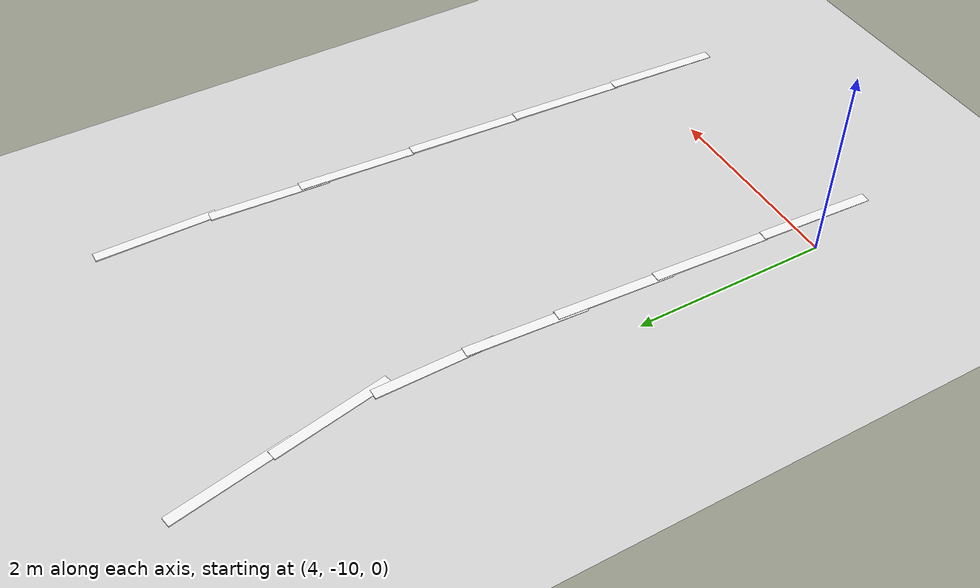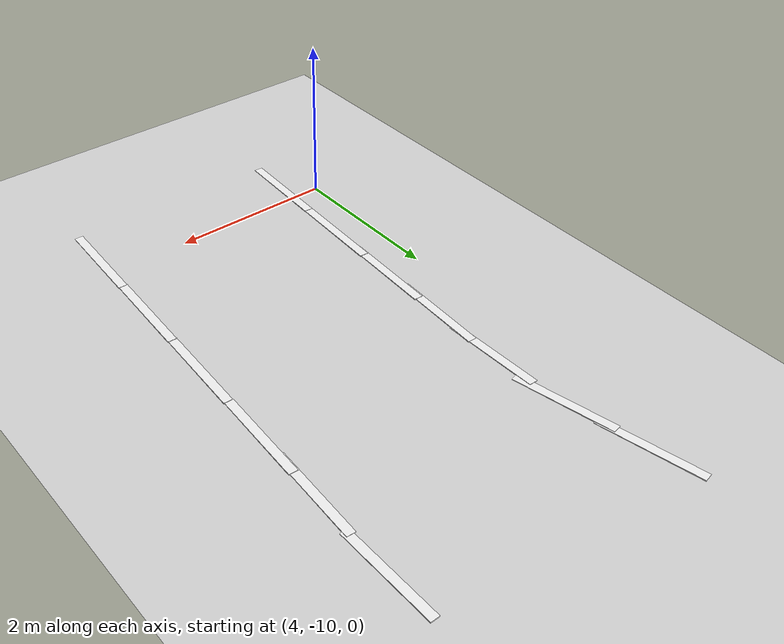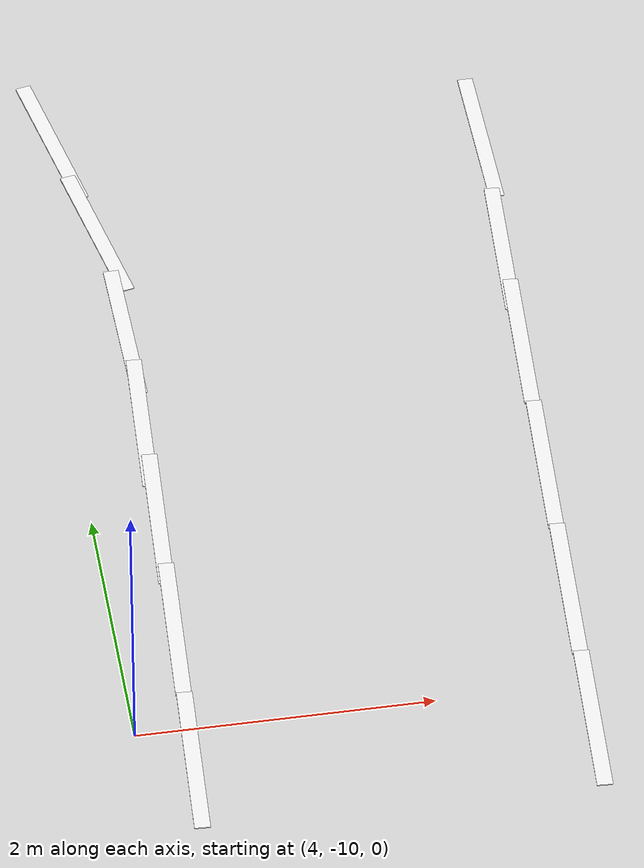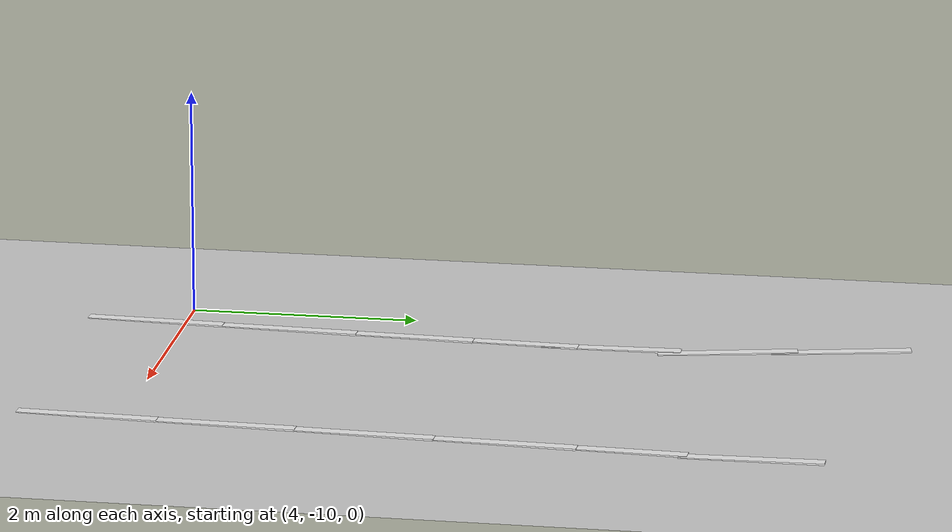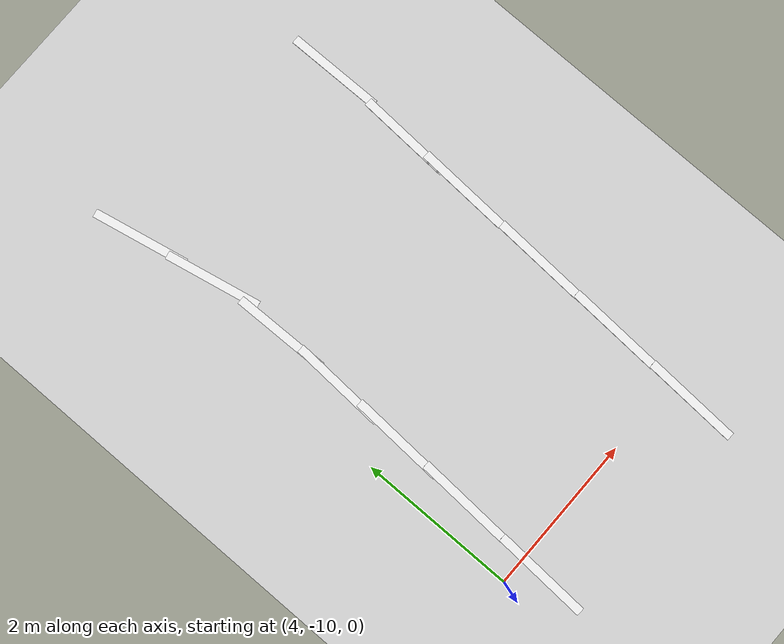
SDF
<sdf version="1.7">
 <world name="default">
  <model name="ground_plane">
   <static>1</static>
   <link name="link">
    <collision name="collision">
     <geometry><plane><normal>0 0 1</normal><size>100 100</size></plane></geometry>
     <surface>
      <contact><collide_bitmask>65535</collide_bitmask></contact>
      <friction><ode><mu>100</mu><mu2>50</mu2></ode></friction>
     </surface>
    </collision>
    <visual name="visual">
     <cast_shadows>0</cast_shadows>
     <geometry><plane><normal>0 0 1</normal><size>100 100</size></plane></geometry>
     <material>
      <script><uri>file://media/materials/scripts/gazebo.material</uri><name>Gazebo/Grey</name></script>
     </material>
    </visual>
   </link>
  </model>
  <model name="road_way_clone_0_clone_clone_1_clone_clone">
   <link name="link">
    <inertial>
     <mass>2</mass>
     <inertia>
      <ixx>0.249647</ixx>
      <ixy>0</ixy>
      <ixz>0</ixz>
      <iyy>0.00205142</iyy>
      <iyz>0</iyz>
      <izz>0.251372</izz>
     </inertia>
    </inertial>
    <visual name="visual">
     <geometry><box><size>0.106644 1.22348 0.03129</size></box></geometry>
     <material>
      <script><name>Gazebo/White</name><uri>file://media/materials/scripts/gazebo.material</uri></script>
      <shader type="pixel"><normal_map>__default__</normal_map></shader>
      <ambient>1 1 1 1</ambient>
      <diffuse>1 1 1 1</diffuse>
      <specular>0 0 0 1</specular>
      <emissive>0 0 0 1</emissive>
     </material>
    </visual>
    <collision name="collision">
     <geometry><box><size>0.10644 1.22348 0.03129</size></box></geometry>
     <surface>
      <friction>
       <ode><mu>1</mu><mu2>1</mu2><fdir1>0 0 0</fdir1><slip1>0</slip1><slip2>0</slip2></ode>
       <torsional>
        <coefficient>1</coefficient>
        <patch_radius>0</patch_radius>
        <surface_radius>0</surface_radius>
        <use_patch_radius>1</use_patch_radius>
        <ode><slip>0</slip></ode>
       </torsional>
      </friction>
      <bounce><restitution_coefficient>0</restitution_coefficient><threshold>1e+06</threshold></bounce>
      <contact>
       <collide_without_contact>0</collide_without_contact>
       <collide_without_contact_bitmask>1</collide_without_contact_bitmask>
       <collide_bitmask>1</collide_bitmask>
       <ode>
        <soft_cfm>0</soft_cfm>
        <soft_erp>0.2</soft_erp>
        <kp>1e+13</kp>
        <kd>1</kd>
        <max_vel>0.01</max_vel>
        <min_depth>0</min_depth>
       </ode>
       <bullet>
        <split_impulse>1</split_impulse>
        <split_impulse_penetration_threshold>-0.01</split_impulse_penetration_threshold>
        <soft_cfm>0</soft_cfm>
        <soft_erp>0.2</soft_erp>
        <kp>1e+13</kp>
        <kd>1</kd>
       </bullet>
      </contact>
     </surface>
    </collision>
   </link>
   <static>0</static>
   <pose>4.26344 -4.20694 -0.013647 -0.005792 0.001324 -2.93966</pose>
  </model>
  <model name="road_way_clone_0_clone_clone_1_clone_clone_0_clone">
   <link name="link">
    <inertial>
     <mass>2</mass>
     <inertia>
      <ixx>0.249647</ixx>
      <ixy>0</ixy>
      <ixz>0</ixz>
      <iyy>0.00205142</iyy>
      <iyz>0</iyz>
      <izz>0.251372</izz>
     </inertia>
    </inertial>
    <visual name="visual">
     <geometry><box><size>0.106644 1.22348 0.03129</size></box></geometry>
     <material>
      <script><name>Gazebo/White</name><uri>file://media/materials/scripts/gazebo.material</uri></script>
      <shader type="pixel"><normal_map>__default__</normal_map></shader>
      <ambient>1 1 1 1</ambient>
      <diffuse>1 1 1 1</diffuse>
      <specular>0 0 0 1</specular>
      <emissive>0 0 0 1</emissive>
     </material>
    </visual>
    <collision name="collision">
     <geometry><box><size>0.10644 1.22348 0.03129</size></box></geometry>
     <surface>
      <friction>
       <ode><mu>1</mu><mu2>1</mu2><fdir1>0 0 0</fdir1><slip1>0</slip1><slip2>0</slip2></ode>
       <torsional>
        <coefficient>1</coefficient>
        <patch_radius>0</patch_radius>
        <surface_radius>0</surface_radius>
        <use_patch_radius>1</use_patch_radius>
        <ode><slip>0</slip></ode>
       </torsional>
      </friction>
      <bounce><restitution_coefficient>0</restitution_coefficient><threshold>1e+06</threshold></bounce>
      <contact>
       <collide_without_contact>0</collide_without_contact>
       <collide_without_contact_bitmask>1</collide_without_contact_bitmask>
       <collide_bitmask>1</collide_bitmask>
       <ode>
        <soft_cfm>0</soft_cfm>
        <soft_erp>0.2</soft_erp>
        <kp>1e+13</kp>
        <kd>1</kd>
        <max_vel>0.01</max_vel>
        <min_depth>0</min_depth>
       </ode>
       <bullet>
        <split_impulse>1</split_impulse>
        <split_impulse_penetration_threshold>-0.01</split_impulse_penetration_threshold>
        <soft_cfm>0</soft_cfm>
        <soft_erp>0.2</soft_erp>
        <kp>1e+13</kp>
        <kd>1</kd>
       </bullet>
      </contact>
     </surface>
    </collision>
   </link>
   <static>0</static>
   <pose>7.24674 -4.63391 -0.012534 -0.005938 0.000193 -3.13189</pose>
  </model>
  <model name="road_way_clone_0_clone_clone_1_clone_clone_clone_0">
   <link name="link">
    <inertial>
     <mass>2</mass>
     <inertia>
      <ixx>0.249647</ixx>
      <ixy>0</ixy>
      <ixz>0</ixz>
      <iyy>0.00205142</iyy>
      <iyz>0</iyz>
      <izz>0.251372</izz>
     </inertia>
    </inertial>
    <visual name="visual">
     <geometry><box><size>0.106644 1.22348 0.03129</size></box></geometry>
     <material>
      <script><name>Gazebo/White</name><uri>file://media/materials/scripts/gazebo.material</uri></script>
      <shader type="pixel"><normal_map>__default__</normal_map></shader>
      <ambient>1 1 1 1</ambient>
      <diffuse>1 1 1 1</diffuse>
      <specular>0 0 0 1</specular>
      <emissive>0 0 0 1</emissive>
     </material>
    </visual>
    <collision name="collision">
     <geometry><box><size>0.10644 1.22348 0.03129</size></box></geometry>
     <surface>
      <friction>
       <ode><mu>1</mu><mu2>1</mu2><fdir1>0 0 0</fdir1><slip1>0</slip1><slip2>0</slip2></ode>
       <torsional>
        <coefficient>1</coefficient>
        <patch_radius>0</patch_radius>
        <surface_radius>0</surface_radius>
        <use_patch_radius>1</use_patch_radius>
        <ode><slip>0</slip></ode>
       </torsional>
      </friction>
      <bounce><restitution_coefficient>0</restitution_coefficient><threshold>1e+06</threshold></bounce>
      <contact>
       <collide_without_contact>0</collide_without_contact>
       <collide_without_contact_bitmask>1</collide_without_contact_bitmask>
       <collide_bitmask>1</collide_bitmask>
       <ode>
        <soft_cfm>0</soft_cfm>
        <soft_erp>0.2</soft_erp>
        <kp>1e+13</kp>
        <kd>1</kd>
        <max_vel>0.01</max_vel>
        <min_depth>0</min_depth>
       </ode>
       <bullet>
        <split_impulse>1</split_impulse>
        <split_impulse_penetration_threshold>-0.01</split_impulse_penetration_threshold>
        <soft_cfm>0</soft_cfm>
        <soft_erp>0.2</soft_erp>
        <kp>1e+13</kp>
        <kd>1</kd>
       </bullet>
      </contact>
     </surface>
    </collision>
   </link>
   <static>0</static>
   <pose>4.44398 -5.17905 -0.013647 -0.005792 0.001324 -2.93966</pose>
  </model>
  <model name="road_way_clone_0_clone_clone_1_clone_clone_clone_1">
   <link name="link">
    <inertial>
     <mass>2</mass>
     <inertia>
      <ixx>0.249647</ixx>
      <ixy>0</ixy>
      <ixz>0</ixz>
      <iyy>0.00205142</iyy>
      <iyz>0</iyz>
      <izz>0.251372</izz>
     </inertia>
    </inertial>
    <visual name="visual">
     <geometry><box><size>0.106644 1.22348 0.03129</size></box></geometry>
     <material>
      <script><name>Gazebo/White</name><uri>file://media/materials/scripts/gazebo.material</uri></script>
      <shader type="pixel"><normal_map>__default__</normal_map></shader>
      <ambient>1 1 1 1</ambient>
      <diffuse>1 1 1 1</diffuse>
      <specular>0 0 0 1</specular>
      <emissive>0 0 0 1</emissive>
     </material>
    </visual>
    <collision name="collision">
     <geometry><box><size>0.10644 1.22348 0.03129</size></box></geometry>
     <surface>
      <friction>
       <ode><mu>1</mu><mu2>1</mu2><fdir1>0 0 0</fdir1><slip1>0</slip1><slip2>0</slip2></ode>
       <torsional>
        <coefficient>1</coefficient>
        <patch_radius>0</patch_radius>
        <surface_radius>0</surface_radius>
        <use_patch_radius>1</use_patch_radius>
        <ode><slip>0</slip></ode>
       </torsional>
      </friction>
      <bounce><restitution_coefficient>0</restitution_coefficient><threshold>1e+06</threshold></bounce>
      <contact>
       <collide_without_contact>0</collide_without_contact>
       <collide_without_contact_bitmask>1</collide_without_contact_bitmask>
       <collide_bitmask>1</collide_bitmask>
       <ode>
        <soft_cfm>0</soft_cfm>
        <soft_erp>0.2</soft_erp>
        <kp>1e+13</kp>
        <kd>1</kd>
        <max_vel>0.01</max_vel>
        <min_depth>0</min_depth>
       </ode>
       <bullet>
        <split_impulse>1</split_impulse>
        <split_impulse_penetration_threshold>-0.01</split_impulse_penetration_threshold>
        <soft_cfm>0</soft_cfm>
        <soft_erp>0.2</soft_erp>
        <kp>1e+13</kp>
        <kd>1</kd>
       </bullet>
      </contact>
     </surface>
    </collision>
   </link>
   <static>0</static>
   <pose>7.1982 -5.77908 -0.013622 -0.005939 -0.000175 3.08929</pose>
  </model>
  <model name="road_way_clone_0_clone_clone_1_clone_clone_clone_1_clone">
   <link name="link">
    <inertial>
     <mass>2</mass>
     <inertia>
      <ixx>0.249647</ixx>
      <ixy>0</ixy>
      <ixz>0</ixz>
      <iyy>0.00205142</iyy>
      <iyz>0</iyz>
      <izz>0.251372</izz>
     </inertia>
    </inertial>
    <visual name="visual">
     <geometry><box><size>0.106644 1.22348 0.03129</size></box></geometry>
     <material>
      <script><name>Gazebo/White</name><uri>file://media/materials/scripts/gazebo.material</uri></script>
      <shader type="pixel"><normal_map>__default__</normal_map></shader>
      <ambient>1 1 1 1</ambient>
      <diffuse>1 1 1 1</diffuse>
      <specular>0 0 0 1</specular>
      <emissive>0 0 0 1</emissive>
     </material>
    </visual>
    <collision name="collision">
     <geometry><box><size>0.10644 1.22348 0.03129</size></box></geometry>
     <surface>
      <friction>
       <ode><mu>1</mu><mu2>1</mu2><fdir1>0 0 0</fdir1><slip1>0</slip1><slip2>0</slip2></ode>
       <torsional>
        <coefficient>1</coefficient>
        <patch_radius>0</patch_radius>
        <surface_radius>0</surface_radius>
        <use_patch_radius>1</use_patch_radius>
        <ode><slip>0</slip></ode>
       </torsional>
      </friction>
      <bounce><restitution_coefficient>0</restitution_coefficient><threshold>1e+06</threshold></bounce>
      <contact>
       <collide_without_contact>0</collide_without_contact>
       <collide_without_contact_bitmask>1</collide_without_contact_bitmask>
       <collide_bitmask>1</collide_bitmask>
       <ode>
        <soft_cfm>0</soft_cfm>
        <soft_erp>0.2</soft_erp>
        <kp>1e+13</kp>
        <kd>1</kd>
        <max_vel>0.01</max_vel>
        <min_depth>0</min_depth>
       </ode>
       <bullet>
        <split_impulse>1</split_impulse>
        <split_impulse_penetration_threshold>-0.01</split_impulse_penetration_threshold>
        <soft_cfm>0</soft_cfm>
        <soft_erp>0.2</soft_erp>
        <kp>1e+13</kp>
        <kd>1</kd>
       </bullet>
      </contact>
     </surface>
    </collision>
   </link>
   <static>0</static>
   <pose>4.49246 -6.19169 -0.013946 -0.005937 0.000243 -3.12349</pose>
  </model>
  <model name="road_way_clone_0_clone_clone_1_clone_clone_clone_1_clone_0">
   <link name="link">
    <inertial>
     <mass>2</mass>
     <inertia>
      <ixx>0.249647</ixx>
      <ixy>0</ixy>
      <ixz>0</ixz>
      <iyy>0.00205142</iyy>
      <iyz>0</iyz>
      <izz>0.251372</izz>
     </inertia>
    </inertial>
    <visual name="visual">
     <geometry><box><size>0.106644 1.22348 0.03129</size></box></geometry>
     <material>
      <script><name>Gazebo/White</name><uri>file://media/materials/scripts/gazebo.material</uri></script>
      <shader type="pixel"><normal_map>__default__</normal_map></shader>
      <ambient>1 1 1 1</ambient>
      <diffuse>1 1 1 1</diffuse>
      <specular>0 0 0 1</specular>
      <emissive>0 0 0 1</emissive>
     </material>
    </visual>
    <collision name="collision">
     <geometry><box><size>0.10644 1.22348 0.03129</size></box></geometry>
     <surface>
      <friction>
       <ode><mu>1</mu><mu2>1</mu2><fdir1>0 0 0</fdir1><slip1>0</slip1><slip2>0</slip2></ode>
       <torsional>
        <coefficient>1</coefficient>
        <patch_radius>0</patch_radius>
        <surface_radius>0</surface_radius>
        <use_patch_radius>1</use_patch_radius>
        <ode><slip>0</slip></ode>
       </torsional>
      </friction>
      <bounce><restitution_coefficient>0</restitution_coefficient><threshold>1e+06</threshold></bounce>
      <contact>
       <collide_without_contact>0</collide_without_contact>
       <collide_without_contact_bitmask>1</collide_without_contact_bitmask>
       <collide_bitmask>1</collide_bitmask>
       <ode>
        <soft_cfm>0</soft_cfm>
        <soft_erp>0.2</soft_erp>
        <kp>1e+13</kp>
        <kd>1</kd>
        <max_vel>0.01</max_vel>
        <min_depth>0</min_depth>
       </ode>
       <bullet>
        <split_impulse>1</split_impulse>
        <split_impulse_penetration_threshold>-0.01</split_impulse_penetration_threshold>
        <soft_cfm>0</soft_cfm>
        <soft_erp>0.2</soft_erp>
        <kp>1e+13</kp>
        <kd>1</kd>
       </bullet>
      </contact>
     </surface>
    </collision>
   </link>
   <static>0</static>
   <pose>4.47654 -7.0933 -0.013622 -0.005939 -0.000175 3.08929</pose>
  </model>
  <model name="road_way_clone_0_clone_clone_1_clone_clone_clone_1_clone_1">
   <link name="link">
    <inertial>
     <mass>2</mass>
     <inertia>
      <ixx>0.249647</ixx>
      <ixy>0</ixy>
      <ixz>0</ixz>
      <iyy>0.00205142</iyy>
      <iyz>0</iyz>
      <izz>0.251372</izz>
     </inertia>
    </inertial>
    <visual name="visual">
     <geometry><box><size>0.106644 1.22348 0.03129</size></box></geometry>
     <material>
      <script><name>Gazebo/White</name><uri>file://media/materials/scripts/gazebo.material</uri></script>
      <shader type="pixel"><normal_map>__default__</normal_map></shader>
      <ambient>1 1 1 1</ambient>
      <diffuse>1 1 1 1</diffuse>
      <specular>0 0 0 1</specular>
      <emissive>0 0 0 1</emissive>
     </material>
    </visual>
    <collision name="collision">
     <geometry><box><size>0.10644 1.22348 0.03129</size></box></geometry>
     <surface>
      <friction>
       <ode><mu>1</mu><mu2>1</mu2><fdir1>0 0 0</fdir1><slip1>0</slip1><slip2>0</slip2></ode>
       <torsional>
        <coefficient>1</coefficient>
        <patch_radius>0</patch_radius>
        <surface_radius>0</surface_radius>
        <use_patch_radius>1</use_patch_radius>
        <ode><slip>0</slip></ode>
       </torsional>
      </friction>
      <bounce><restitution_coefficient>0</restitution_coefficient><threshold>1e+06</threshold></bounce>
      <contact>
       <collide_without_contact>0</collide_without_contact>
       <collide_without_contact_bitmask>1</collide_without_contact_bitmask>
       <collide_bitmask>1</collide_bitmask>
       <ode>
        <soft_cfm>0</soft_cfm>
        <soft_erp>0.2</soft_erp>
        <kp>1e+13</kp>
        <kd>1</kd>
        <max_vel>0.01</max_vel>
        <min_depth>0</min_depth>
       </ode>
       <bullet>
        <split_impulse>1</split_impulse>
        <split_impulse_penetration_threshold>-0.01</split_impulse_penetration_threshold>
        <soft_cfm>0</soft_cfm>
        <soft_erp>0.2</soft_erp>
        <kp>1e+13</kp>
        <kd>1</kd>
       </bullet>
      </contact>
     </surface>
    </collision>
   </link>
   <static>0</static>
   <pose>7.16303 -6.7125 -0.011904 -0.005939 -0.000175 3.08929</pose>
  </model>
  <model name="road_way_clone_0_clone_clone_1_clone_clone_clone_1_clone_2">
   <link name="link">
    <inertial>
     <mass>2</mass>
     <inertia>
      <ixx>0.249647</ixx>
      <ixy>0</ixy>
      <ixz>0</ixz>
      <iyy>0.00205142</iyy>
      <iyz>0</iyz>
      <izz>0.251372</izz>
     </inertia>
    </inertial>
    <visual name="visual">
     <geometry><box><size>0.106644 1.22348 0.03129</size></box></geometry>
     <material>
      <script><name>Gazebo/White</name><uri>file://media/materials/scripts/gazebo.material</uri></script>
      <shader type="pixel"><normal_map>__default__</normal_map></shader>
      <ambient>1 1 1 1</ambient>
      <diffuse>1 1 1 1</diffuse>
      <specular>0 0 0 1</specular>
      <emissive>0 0 0 1</emissive>
     </material>
    </visual>
    <collision name="collision">
     <geometry><box><size>0.10644 1.22348 0.03129</size></box></geometry>
     <surface>
      <friction>
       <ode><mu>1</mu><mu2>1</mu2><fdir1>0 0 0</fdir1><slip1>0</slip1><slip2>0</slip2></ode>
       <torsional>
        <coefficient>1</coefficient>
        <patch_radius>0</patch_radius>
        <surface_radius>0</surface_radius>
        <use_patch_radius>1</use_patch_radius>
        <ode><slip>0</slip></ode>
       </torsional>
      </friction>
      <bounce><restitution_coefficient>0</restitution_coefficient><threshold>1e+06</threshold></bounce>
      <contact>
       <collide_without_contact>0</collide_without_contact>
       <collide_without_contact_bitmask>1</collide_without_contact_bitmask>
       <collide_bitmask>1</collide_bitmask>
       <ode>
        <soft_cfm>0</soft_cfm>
        <soft_erp>0.2</soft_erp>
        <kp>1e+13</kp>
        <kd>1</kd>
        <max_vel>0.01</max_vel>
        <min_depth>0</min_depth>
       </ode>
       <bullet>
        <split_impulse>1</split_impulse>
        <split_impulse_penetration_threshold>-0.01</split_impulse_penetration_threshold>
        <soft_cfm>0</soft_cfm>
        <soft_erp>0.2</soft_erp>
        <kp>1e+13</kp>
        <kd>1</kd>
       </bullet>
      </contact>
     </surface>
    </collision>
   </link>
   <static>0</static>
   <pose>4.44589 -8.02301 -0.012881 -0.005939 -0.000175 3.08929</pose>
  </model>
  <model name="road_way_clone_0_clone_clone_1_clone_clone_clone_1_clone_1_clone">
   <link name="link">
    <inertial>
     <mass>2</mass>
     <inertia>
      <ixx>0.249647</ixx>
      <ixy>0</ixy>
      <ixz>0</ixz>
      <iyy>0.00205142</iyy>
      <iyz>0</iyz>
      <izz>0.251372</izz>
     </inertia>
    </inertial>
    <visual name="visual">
     <geometry><box><size>0.106644 1.22348 0.03129</size></box></geometry>
     <material>
      <script><name>Gazebo/White</name><uri>file://media/materials/scripts/gazebo.material</uri></script>
      <shader type="pixel"><normal_map>__default__</normal_map></shader>
      <ambient>1 1 1 1</ambient>
      <diffuse>1 1 1 1</diffuse>
      <specular>0 0 0 1</specular>
      <emissive>0 0 0 1</emissive>
     </material>
    </visual>
    <collision name="collision">
     <geometry><box><size>0.10644 1.22348 0.03129</size></box></geometry>
     <surface>
      <friction>
       <ode><mu>1</mu><mu2>1</mu2><fdir1>0 0 0</fdir1><slip1>0</slip1><slip2>0</slip2></ode>
       <torsional>
        <coefficient>1</coefficient>
        <patch_radius>0</patch_radius>
        <surface_radius>0</surface_radius>
        <use_patch_radius>1</use_patch_radius>
        <ode><slip>0</slip></ode>
       </torsional>
      </friction>
      <bounce><restitution_coefficient>0</restitution_coefficient><threshold>1e+06</threshold></bounce>
      <contact>
       <collide_without_contact>0</collide_without_contact>
       <collide_without_contact_bitmask>1</collide_without_contact_bitmask>
       <collide_bitmask>1</collide_bitmask>
       <ode>
        <soft_cfm>0</soft_cfm>
        <soft_erp>0.2</soft_erp>
        <kp>1e+13</kp>
        <kd>1</kd>
        <max_vel>0.01</max_vel>
        <min_depth>0</min_depth>
       </ode>
       <bullet>
        <split_impulse>1</split_impulse>
        <split_impulse_penetration_threshold>-0.01</split_impulse_penetration_threshold>
        <soft_cfm>0</soft_cfm>
        <soft_erp>0.2</soft_erp>
        <kp>1e+13</kp>
        <kd>1</kd>
       </bullet>
      </contact>
     </surface>
    </collision>
   </link>
   <static>0</static>
   <pose>7.10877 -7.92457 -0.011904 -0.005939 -0.000175 3.08929</pose>
  </model>
  <model name="road_way_clone_0_clone_clone_1_clone_clone_clone_1_clone_1_clone_0">
   <link name="link">
    <inertial>
     <mass>2</mass>
     <inertia>
      <ixx>0.249647</ixx>
      <ixy>0</ixy>
      <ixz>0</ixz>
      <iyy>0.00205142</iyy>
      <iyz>0</iyz>
      <izz>0.251372</izz>
     </inertia>
    </inertial>
    <visual name="visual">
     <geometry><box><size>0.106644 1.22348 0.03129</size></box></geometry>
     <material>
      <script><name>Gazebo/White</name><uri>file://media/materials/scripts/gazebo.material</uri></script>
      <shader type="pixel"><normal_map>__default__</normal_map></shader>
      <ambient>1 1 1 1</ambient>
      <diffuse>1 1 1 1</diffuse>
      <specular>0 0 0 1</specular>
      <emissive>0 0 0 1</emissive>
     </material>
    </visual>
    <collision name="collision">
     <geometry><box><size>0.10644 1.22348 0.03129</size></box></geometry>
     <surface>
      <friction>
       <ode><mu>1</mu><mu2>1</mu2><fdir1>0 0 0</fdir1><slip1>0</slip1><slip2>0</slip2></ode>
       <torsional>
        <coefficient>1</coefficient>
        <patch_radius>0</patch_radius>
        <surface_radius>0</surface_radius>
        <use_patch_radius>1</use_patch_radius>
        <ode><slip>0</slip></ode>
       </torsional>
      </friction>
      <bounce><restitution_coefficient>0</restitution_coefficient><threshold>1e+06</threshold></bounce>
      <contact>
       <collide_without_contact>0</collide_without_contact>
       <collide_without_contact_bitmask>1</collide_without_contact_bitmask>
       <collide_bitmask>1</collide_bitmask>
       <ode>
        <soft_cfm>0</soft_cfm>
        <soft_erp>0.2</soft_erp>
        <kp>1e+13</kp>
        <kd>1</kd>
        <max_vel>0.01</max_vel>
        <min_depth>0</min_depth>
       </ode>
       <bullet>
        <split_impulse>1</split_impulse>
        <split_impulse_penetration_threshold>-0.01</split_impulse_penetration_threshold>
        <soft_cfm>0</soft_cfm>
        <soft_erp>0.2</soft_erp>
        <kp>1e+13</kp>
        <kd>1</kd>
       </bullet>
      </contact>
     </surface>
    </collision>
   </link>
   <static>0</static>
   <pose>7.05309 -9.11616 -0.011904 -0.005939 -0.000175 3.08929</pose>
  </model>
  <model name="road_way_clone_0_clone_clone_1_clone_clone_clone_1_clone_2_clone">
   <link name="link">
    <inertial>
     <mass>2</mass>
     <inertia>
      <ixx>0.249647</ixx>
      <ixy>0</ixy>
      <ixz>0</ixz>
      <iyy>0.00205142</iyy>
      <iyz>0</iyz>
      <izz>0.251372</izz>
     </inertia>
    </inertial>
    <visual name="visual">
     <geometry><box><size>0.106644 1.22348 0.03129</size></box></geometry>
     <material>
      <script><name>Gazebo/White</name><uri>file://media/materials/scripts/gazebo.material</uri></script>
      <shader type="pixel"><normal_map>__default__</normal_map></shader>
      <ambient>1 1 1 1</ambient>
      <diffuse>1 1 1 1</diffuse>
      <specular>0 0 0 1</specular>
      <emissive>0 0 0 1</emissive>
     </material>
    </visual>
    <collision name="collision">
     <geometry><box><size>0.10644 1.22348 0.03129</size></box></geometry>
     <surface>
      <friction>
       <ode><mu>1</mu><mu2>1</mu2><fdir1>0 0 0</fdir1><slip1>0</slip1><slip2>0</slip2></ode>
       <torsional>
        <coefficient>1</coefficient>
        <patch_radius>0</patch_radius>
        <surface_radius>0</surface_radius>
        <use_patch_radius>1</use_patch_radius>
        <ode><slip>0</slip></ode>
       </torsional>
      </friction>
      <bounce><restitution_coefficient>0</restitution_coefficient><threshold>1e+06</threshold></bounce>
      <contact>
       <collide_without_contact>0</collide_without_contact>
       <collide_without_contact_bitmask>1</collide_without_contact_bitmask>
       <collide_bitmask>1</collide_bitmask>
       <ode>
        <soft_cfm>0</soft_cfm>
        <soft_erp>0.2</soft_erp>
        <kp>1e+13</kp>
        <kd>1</kd>
        <max_vel>0.01</max_vel>
        <min_depth>0</min_depth>
       </ode>
       <bullet>
        <split_impulse>1</split_impulse>
        <split_impulse_penetration_threshold>-0.01</split_impulse_penetration_threshold>
        <soft_cfm>0</soft_cfm>
        <soft_erp>0.2</soft_erp>
        <kp>1e+13</kp>
        <kd>1</kd>
       </bullet>
      </contact>
     </surface>
    </collision>
   </link>
   <static>0</static>
   <pose>4.40325 -9.06878 -0.012291 -0.005939 -0.000175 3.08929</pose>
  </model>
  <model name="road_way_clone_0_clone_clone_1_clone_clone_clone_1_clone_2_clone_0">
   <link name="link">
    <inertial>
     <mass>2</mass>
     <inertia>
      <ixx>0.249647</ixx>
      <ixy>0</ixy>
      <ixz>0</ixz>
      <iyy>0.00205142</iyy>
      <iyz>0</iyz>
      <izz>0.251372</izz>
     </inertia>
    </inertial>
    <visual name="visual">
     <geometry><box><size>0.106644 1.22348 0.03129</size></box></geometry>
     <material>
      <script><name>Gazebo/White</name><uri>file://media/materials/scripts/gazebo.material</uri></script>
      <shader type="pixel"><normal_map>__default__</normal_map></shader>
      <ambient>1 1 1 1</ambient>
      <diffuse>1 1 1 1</diffuse>
      <specular>0 0 0 1</specular>
      <emissive>0 0 0 1</emissive>
     </material>
    </visual>
    <collision name="collision">
     <geometry><box><size>0.10644 1.22348 0.03129</size></box></geometry>
     <surface>
      <friction>
       <ode><mu>1</mu><mu2>1</mu2><fdir1>0 0 0</fdir1><slip1>0</slip1><slip2>0</slip2></ode>
       <torsional>
        <coefficient>1</coefficient>
        <patch_radius>0</patch_radius>
        <surface_radius>0</surface_radius>
        <use_patch_radius>1</use_patch_radius>
        <ode><slip>0</slip></ode>
       </torsional>
      </friction>
      <bounce><restitution_coefficient>0</restitution_coefficient><threshold>1e+06</threshold></bounce>
      <contact>
       <collide_without_contact>0</collide_without_contact>
       <collide_without_contact_bitmask>1</collide_without_contact_bitmask>
       <collide_bitmask>1</collide_bitmask>
       <ode>
        <soft_cfm>0</soft_cfm>
        <soft_erp>0.2</soft_erp>
        <kp>1e+13</kp>
        <kd>1</kd>
        <max_vel>0.01</max_vel>
        <min_depth>0</min_depth>
       </ode>
       <bullet>
        <split_impulse>1</split_impulse>
        <split_impulse_penetration_threshold>-0.01</split_impulse_penetration_threshold>
        <soft_cfm>0</soft_cfm>
        <soft_erp>0.2</soft_erp>
        <kp>1e+13</kp>
        <kd>1</kd>
       </bullet>
      </contact>
     </surface>
    </collision>
   </link>
   <static>0</static>
   <pose>6.99744 -10.3115 -0.013622 -0.005939 -0.000175 3.08929</pose>
  </model>
  <model name="road_way_clone_0_clone_clone_1_clone_clone_clone_1_clone_2_clone_1">
   <link name="link">
    <inertial>
     <mass>2</mass>
     <inertia>
      <ixx>0.249647</ixx>
      <ixy>0</ixy>
      <ixz>0</ixz>
      <iyy>0.00205142</iyy>
      <iyz>0</iyz>
      <izz>0.251372</izz>
     </inertia>
    </inertial>
    <visual name="visual">
     <geometry><box><size>0.106644 1.22348 0.03129</size></box></geometry>
     <material>
      <script><name>Gazebo/White</name><uri>file://media/materials/scripts/gazebo.material</uri></script>
      <shader type="pixel"><normal_map>__default__</normal_map></shader>
      <ambient>1 1 1 1</ambient>
      <diffuse>1 1 1 1</diffuse>
      <specular>0 0 0 1</specular>
      <emissive>0 0 0 1</emissive>
     </material>
    </visual>
    <collision name="collision">
     <geometry><box><size>0.10644 1.22348 0.03129</size></box></geometry>
     <surface>
      <friction>
       <ode><mu>1</mu><mu2>1</mu2><fdir1>0 0 0</fdir1><slip1>0</slip1><slip2>0</slip2></ode>
       <torsional>
        <coefficient>1</coefficient>
        <patch_radius>0</patch_radius>
        <surface_radius>0</surface_radius>
        <use_patch_radius>1</use_patch_radius>
        <ode><slip>0</slip></ode>
       </torsional>
      </friction>
      <bounce><restitution_coefficient>0</restitution_coefficient><threshold>1e+06</threshold></bounce>
      <contact>
       <collide_without_contact>0</collide_without_contact>
       <collide_without_contact_bitmask>1</collide_without_contact_bitmask>
       <collide_bitmask>1</collide_bitmask>
       <ode>
        <soft_cfm>0</soft_cfm>
        <soft_erp>0.2</soft_erp>
        <kp>1e+13</kp>
        <kd>1</kd>
        <max_vel>0.01</max_vel>
        <min_depth>0</min_depth>
       </ode>
       <bullet>
        <split_impulse>1</split_impulse>
        <split_impulse_penetration_threshold>-0.01</split_impulse_penetration_threshold>
        <soft_cfm>0</soft_cfm>
        <soft_erp>0.2</soft_erp>
        <kp>1e+13</kp>
        <kd>1</kd>
       </bullet>
      </contact>
     </surface>
    </collision>
   </link>
   <static>0</static>
   <pose>4.34527 -10.2722 -0.013464 -0.005939 -0.000175 3.08929</pose>
  </model>
 </world>
</sdf>
